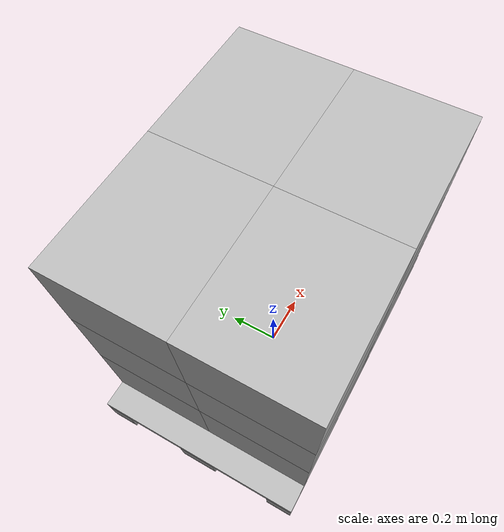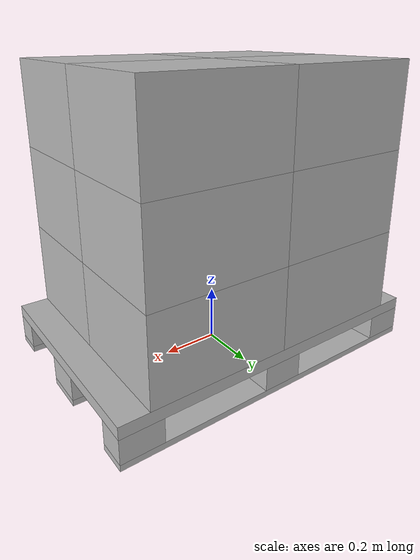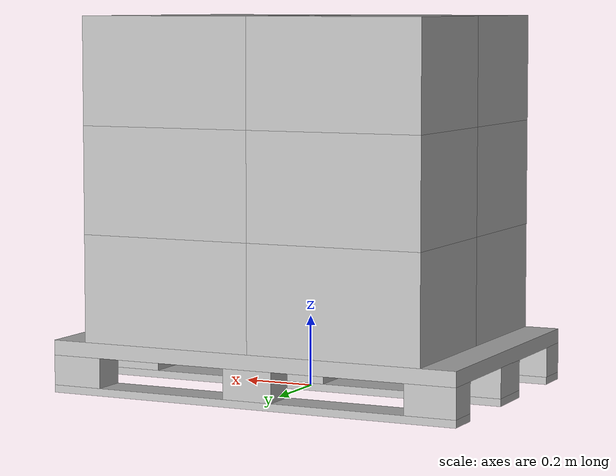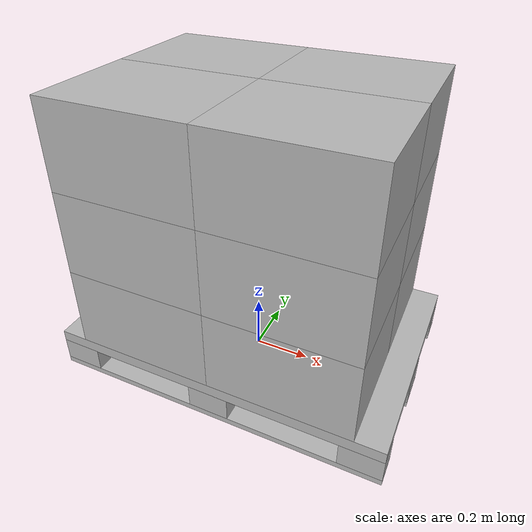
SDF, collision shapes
<?xml version="1.0" ?>
<!-- |    This document was autogenerated by xacro from model.xacro                    | -->
<!-- |    EDITING THIS FILE BY HAND IS NOT RECOMMENDED                                 | -->
<sdf version="1.5">
  <model name="pallet cardboard boxes">
    <!-- Rises the pallet above the ground -->
    <static>false</static>
    <self_collide>false</self_collide>
    <allow_auto_disable>true</allow_auto_disable>
    <link name="link">
      <pose>0 0 0.0635  0 0 0</pose>
      <inertial>
        <mass>25.0</mass>
        <inertia>
          <ixx>1</ixx>
          <ixy>0</ixy>
          <ixz>0</ixz>
          <iyy>1</iyy>
          <iyz>0</iyz>
          <izz>1</izz>
        </inertia>
      </inertial>
      <collision name="top">
        <pose>0 0 0.0625  0 0 0</pose>
        <geometry>
          <box>
            <size>1.20 0.80 0.042</size>
          </box>
        </geometry>
      </collision>
      <collision name="colum_1">
        <pose>0.5275 -0.35 0  0 0 0</pose>
        <geometry>
          <box>
            <size>.145 0.10 0.085</size>
          </box>
        </geometry>
      </collision>
      <collision name="colum_2">
        <pose>0.5275 0 0  0 0 0</pose>
        <geometry>
          <box>
            <size>.145 0.145 0.085</size>
          </box>
        </geometry>
      </collision>
      <collision name="colum_3">
        <pose>0.5275 0.35 0  0 0 0</pose>
        <geometry>
          <box>
            <size>.145 0.10 0.085</size>
          </box>
        </geometry>
      </collision>
      <collision name="colum_4">
        <pose>0 -0.35 0  0 0 0</pose>
        <geometry>
          <box>
            <size>.145 0.10 0.085</size>
          </box>
        </geometry>
      </collision>
      <collision name="colum_5">
        <pose>0 0 0  0 0 0</pose>
        <geometry>
          <box>
            <size>.145 0.145 0.085</size>
          </box>
        </geometry>
      </collision>
      <collision name="colum_6">
        <pose>0 0.35 0  0 0 0</pose>
        <geometry>
          <box>
            <size>.145 0.10 0.085</size>
          </box>
        </geometry>
      </collision>
      <collision name="colum_7">
        <pose>-0.5275 -0.35 0  0 0 0</pose>
        <geometry>
          <box>
            <size>.145 0.10 0.085</size>
          </box>
        </geometry>
      </collision>
      <collision name="colum_8">
        <pose>-0.5275 0 0  0 0 0</pose>
        <geometry>
          <box>
            <size>.145 0.145 0.085</size>
          </box>
        </geometry>
      </collision>
      <collision name="colum_9">
        <pose>-0.5275 0.35 0  0 0 0</pose>
        <geometry>
          <box>
            <size>.145 0.10 0.085</size>
          </box>
        </geometry>
      </collision>
      <collision name="bottom_1">
        <pose>0 -0.35 -0.053  0 0 0</pose>
        <geometry>
          <box>
            <size>1.20 0.10 0.021</size>
          </box>
        </geometry>
      </collision>
      <collision name="bottom_2">
        <pose>0 0 -0.053  0 0 0</pose>
        <geometry>
          <box>
            <size>1.20 0.145 0.021</size>
          </box>
        </geometry>
      </collision>
      <collision name="bottom_3">
        <pose>0 0.35 -0.053  0 0 0</pose>
        <geometry>
          <box>
            <size>1.20 0.10 0.021</size>
          </box>
        </geometry>
      </collision>
      <visual name="visual">
        <geometry>
          <mesh>
            <uri>model://europallet/meshes/europallet.dae</uri>
          </mesh>
        </geometry>
      </visual>
    </link>
    <!-- Cardboard Box dimensions: 50 x 40 x 30 cm-->
    <!-- First level of boxes -->
    <link name="cardboard_box_1_lvl_1">
      <pose>0.25 0.2 0.297  0 0 0</pose>
      <inertial>
        <mass>2</mass>
        <inertia>
          <ixx>0.041666667</ixx>
          <ixy>0</ixy>
          <ixz>0</ixz>
          <iyy>0.056666667</iyy>
          <iyz>0</iyz>
          <izz>0.068333333</izz>
        </inertia>
      </inertial>
      <collision name="collision">
        <geometry>
          <box>
            <size>0.5 0.4 0.3</size>
          </box>
        </geometry>
        <surface>
          <friction>
            <ode>
              <mu>1.0</mu>
              <mu2>1.0</mu2>
            </ode>
          </friction>
          <contact>
            <ode>
              <kp>10000000.0</kp>
              <kd>1.0</kd>
              <min_depth>0.001</min_depth>
              <max_vel>0.1</max_vel>
            </ode>
          </contact>
        </surface>
      </collision>
      <visual name="visual">
        <pose>0 0 -0.15 0 0 0</pose>
        <geometry>
          <mesh>
            <uri>model://cardboard_box/meshes/cardboard_box.dae</uri>
            <scale>1.25931896 1.007455168 0.755591376</scale>
          </mesh>
        </geometry>
      </visual>
    </link>
    <link name="cardboard_box_2_lvl_1">
      <pose>0.25 -0.2 0.297  0 0 0</pose>
      <inertial>
        <mass>2</mass>
        <inertia>
          <ixx>0.041666667</ixx>
          <ixy>0</ixy>
          <ixz>0</ixz>
          <iyy>0.056666667</iyy>
          <iyz>0</iyz>
          <izz>0.068333333</izz>
        </inertia>
      </inertial>
      <collision name="collision">
        <geometry>
          <box>
            <size>0.5 0.4 0.3</size>
          </box>
        </geometry>
        <surface>
          <friction>
            <ode>
              <mu>1.0</mu>
              <mu2>1.0</mu2>
            </ode>
          </friction>
          <contact>
            <ode>
              <kp>10000000.0</kp>
              <kd>1.0</kd>
              <min_depth>0.001</min_depth>
              <max_vel>0.1</max_vel>
            </ode>
          </contact>
        </surface>
      </collision>
      <visual name="visual">
        <pose>0 0 -0.15 0 0 0</pose>
        <geometry>
          <mesh>
            <uri>model://cardboard_box/meshes/cardboard_box.dae</uri>
            <scale>1.25931896 1.007455168 0.755591376</scale>
          </mesh>
        </geometry>
      </visual>
    </link>
    <link name="cardboard_box_3_lvl_1">
      <pose>-0.25 0.2 0.297  0 0 0</pose>
      <inertial>
        <mass>2</mass>
        <inertia>
          <ixx>0.041666667</ixx>
          <ixy>0</ixy>
          <ixz>0</ixz>
          <iyy>0.056666667</iyy>
          <iyz>0</iyz>
          <izz>0.068333333</izz>
        </inertia>
      </inertial>
      <collision name="collision">
        <geometry>
          <box>
            <size>0.5 0.4 0.3</size>
          </box>
        </geometry>
        <surface>
          <friction>
            <ode>
              <mu>1.0</mu>
              <mu2>1.0</mu2>
            </ode>
          </friction>
          <contact>
            <ode>
              <kp>10000000.0</kp>
              <kd>1.0</kd>
              <min_depth>0.001</min_depth>
              <max_vel>0.1</max_vel>
            </ode>
          </contact>
        </surface>
      </collision>
      <visual name="visual">
        <pose>0 0 -0.15 0 0 0</pose>
        <geometry>
          <mesh>
            <uri>model://cardboard_box/meshes/cardboard_box.dae</uri>
            <scale>1.25931896 1.007455168 0.755591376</scale>
          </mesh>
        </geometry>
      </visual>
    </link>
    <link name="cardboard_box_4_lvl_1">
      <pose>-0.25 -0.2 0.297  0 0 0</pose>
      <inertial>
        <mass>2</mass>
        <inertia>
          <ixx>0.041666667</ixx>
          <ixy>0</ixy>
          <ixz>0</ixz>
          <iyy>0.056666667</iyy>
          <iyz>0</iyz>
          <izz>0.068333333</izz>
        </inertia>
      </inertial>
      <collision name="collision">
        <geometry>
          <box>
            <size>0.5 0.4 0.3</size>
          </box>
        </geometry>
        <surface>
          <friction>
            <ode>
              <mu>1.0</mu>
              <mu2>1.0</mu2>
            </ode>
          </friction>
          <contact>
            <ode>
              <kp>10000000.0</kp>
              <kd>1.0</kd>
              <min_depth>0.001</min_depth>
              <max_vel>0.1</max_vel>
            </ode>
          </contact>
        </surface>
      </collision>
      <visual name="visual">
        <pose>0 0 -0.15 0 0 0</pose>
        <geometry>
          <mesh>
            <uri>model://cardboard_box/meshes/cardboard_box.dae</uri>
            <scale>1.25931896 1.007455168 0.755591376</scale>
          </mesh>
        </geometry>
      </visual>
    </link>
    <joint name="cardboard_box_1_lvl_1_joint" type="fixed">
      <parent>link</parent>
      <child>cardboard_box_1_lvl_1</child>
    </joint>
    <joint name="cardboard_box_2_lvl_1_joint" type="fixed">
      <parent>link</parent>
      <child>cardboard_box_2_lvl_1</child>
    </joint>
    <joint name="cardboard_box_3_lvl_1_joint" type="fixed">
      <parent>link</parent>
      <child>cardboard_box_3_lvl_1</child>
    </joint>
    <joint name="cardboard_box_4_lvl_1_joint" type="fixed">
      <parent>link</parent>
      <child>cardboard_box_4_lvl_1</child>
    </joint>
    <!-- Second level of boxes -->
    <link name="cardboard_box_1_lvl_2">
      <pose>0.25 0.2 0.597  0 0 0</pose>
      <inertial>
        <mass>2</mass>
        <inertia>
          <ixx>0.041666667</ixx>
          <ixy>0</ixy>
          <ixz>0</ixz>
          <iyy>0.056666667</iyy>
          <iyz>0</iyz>
          <izz>0.068333333</izz>
        </inertia>
      </inertial>
      <collision name="collision">
        <geometry>
          <box>
            <size>0.5 0.4 0.3</size>
          </box>
        </geometry>
        <surface>
          <friction>
            <ode>
              <mu>1.0</mu>
              <mu2>1.0</mu2>
            </ode>
          </friction>
          <contact>
            <ode>
              <kp>10000000.0</kp>
              <kd>1.0</kd>
              <min_depth>0.001</min_depth>
              <max_vel>0.1</max_vel>
            </ode>
          </contact>
        </surface>
      </collision>
      <visual name="visual">
        <pose>0 0 -0.15 0 0 0</pose>
        <geometry>
          <mesh>
            <uri>model://cardboard_box/meshes/cardboard_box.dae</uri>
            <scale>1.25931896 1.007455168 0.755591376</scale>
          </mesh>
        </geometry>
      </visual>
    </link>
    <link name="cardboard_box_2_lvl_2">
      <pose>0.25 -0.2 0.597  0 0 0</pose>
      <inertial>
        <mass>2</mass>
        <inertia>
          <ixx>0.041666667</ixx>
          <ixy>0</ixy>
          <ixz>0</ixz>
          <iyy>0.056666667</iyy>
          <iyz>0</iyz>
          <izz>0.068333333</izz>
        </inertia>
      </inertial>
      <collision name="collision">
        <geometry>
          <box>
            <size>0.5 0.4 0.3</size>
          </box>
        </geometry>
        <surface>
          <friction>
            <ode>
              <mu>1.0</mu>
              <mu2>1.0</mu2>
            </ode>
          </friction>
          <contact>
            <ode>
              <kp>10000000.0</kp>
              <kd>1.0</kd>
              <min_depth>0.001</min_depth>
              <max_vel>0.1</max_vel>
            </ode>
          </contact>
        </surface>
      </collision>
      <visual name="visual">
        <pose>0 0 -0.15 0 0 0</pose>
        <geometry>
          <mesh>
            <uri>model://cardboard_box/meshes/cardboard_box.dae</uri>
            <scale>1.25931896 1.007455168 0.755591376</scale>
          </mesh>
        </geometry>
      </visual>
    </link>
    <link name="cardboard_box_3_lvl_2">
      <pose>-0.25 0.2 0.597  0 0 0</pose>
      <inertial>
        <mass>2</mass>
        <inertia>
          <ixx>0.041666667</ixx>
          <ixy>0</ixy>
          <ixz>0</ixz>
          <iyy>0.056666667</iyy>
          <iyz>0</iyz>
          <izz>0.068333333</izz>
        </inertia>
      </inertial>
      <collision name="collision">
        <geometry>
          <box>
            <size>0.5 0.4 0.3</size>
          </box>
        </geometry>
        <surface>
          <friction>
            <ode>
              <mu>1.0</mu>
              <mu2>1.0</mu2>
            </ode>
          </friction>
          <contact>
            <ode>
              <kp>10000000.0</kp>
              <kd>1.0</kd>
              <min_depth>0.001</min_depth>
              <max_vel>0.1</max_vel>
            </ode>
          </contact>
        </surface>
      </collision>
      <visual name="visual">
        <pose>0 0 -0.15 0 0 0</pose>
        <geometry>
          <mesh>
            <uri>model://cardboard_box/meshes/cardboard_box.dae</uri>
            <scale>1.25931896 1.007455168 0.755591376</scale>
          </mesh>
        </geometry>
      </visual>
    </link>
    <link name="cardboard_box_4_lvl_2">
      <pose>-0.25 -0.2 0.597  0 0 0</pose>
      <inertial>
        <mass>2</mass>
        <inertia>
          <ixx>0.041666667</ixx>
          <ixy>0</ixy>
          <ixz>0</ixz>
          <iyy>0.056666667</iyy>
          <iyz>0</iyz>
          <izz>0.068333333</izz>
        </inertia>
      </inertial>
      <collision name="collision">
        <geometry>
          <box>
            <size>0.5 0.4 0.3</size>
          </box>
        </geometry>
        <surface>
          <friction>
            <ode>
              <mu>1.0</mu>
              <mu2>1.0</mu2>
            </ode>
          </friction>
          <contact>
            <ode>
              <kp>10000000.0</kp>
              <kd>1.0</kd>
              <min_depth>0.001</min_depth>
              <max_vel>0.1</max_vel>
            </ode>
          </contact>
        </surface>
      </collision>
      <visual name="visual">
        <pose>0 0 -0.15 0 0 0</pose>
        <geometry>
          <mesh>
            <uri>model://cardboard_box/meshes/cardboard_box.dae</uri>
            <scale>1.25931896 1.007455168 0.755591376</scale>
          </mesh>
        </geometry>
      </visual>
    </link>
    <joint name="cardboard_box_1_lvl_2_joint" type="fixed">
      <parent>link</parent>
      <child>cardboard_box_1_lvl_2</child>
    </joint>
    <joint name="cardboard_box_2_lvl_2_joint" type="fixed">
      <parent>link</parent>
      <child>cardboard_box_2_lvl_2</child>
    </joint>
    <joint name="cardboard_box_3_lvl_2_joint" type="fixed">
      <parent>link</parent>
      <child>cardboard_box_3_lvl_2</child>
    </joint>
    <joint name="cardboard_box_4_lvl_2_joint" type="fixed">
      <parent>link</parent>
      <child>cardboard_box_4_lvl_2</child>
    </joint>
    <!-- Third level of boxes -->
    <link name="cardboard_box_1_lvl_3">
      <pose>0.25 0.2 0.897  0 0 0</pose>
      <inertial>
        <mass>2</mass>
        <inertia>
          <ixx>0.041666667</ixx>
          <ixy>0</ixy>
          <ixz>0</ixz>
          <iyy>0.056666667</iyy>
          <iyz>0</iyz>
          <izz>0.068333333</izz>
        </inertia>
      </inertial>
      <collision name="collision">
        <geometry>
          <box>
            <size>0.5 0.4 0.3</size>
          </box>
        </geometry>
        <surface>
          <friction>
            <ode>
              <mu>1.0</mu>
              <mu2>1.0</mu2>
            </ode>
          </friction>
          <contact>
            <ode>
              <kp>10000000.0</kp>
              <kd>1.0</kd>
              <min_depth>0.001</min_depth>
              <max_vel>0.1</max_vel>
            </ode>
          </contact>
        </surface>
      </collision>
      <visual name="visual">
        <pose>0 0 -0.15 0 0 0</pose>
        <geometry>
          <mesh>
            <uri>model://cardboard_box/meshes/cardboard_box.dae</uri>
            <scale>1.25931896 1.007455168 0.755591376</scale>
          </mesh>
        </geometry>
      </visual>
    </link>
    <link name="cardboard_box_2_lvl_3">
      <pose>0.25 -0.2 0.897  0 0 0</pose>
      <inertial>
        <mass>2</mass>
        <inertia>
          <ixx>0.041666667</ixx>
          <ixy>0</ixy>
          <ixz>0</ixz>
          <iyy>0.056666667</iyy>
          <iyz>0</iyz>
          <izz>0.068333333</izz>
        </inertia>
      </inertial>
      <collision name="collision">
        <geometry>
          <box>
            <size>0.5 0.4 0.3</size>
          </box>
        </geometry>
        <surface>
          <friction>
            <ode>
              <mu>1.0</mu>
              <mu2>1.0</mu2>
            </ode>
          </friction>
          <contact>
            <ode>
              <kp>10000000.0</kp>
              <kd>1.0</kd>
              <min_depth>0.001</min_depth>
              <max_vel>0.1</max_vel>
            </ode>
          </contact>
        </surface>
      </collision>
      <visual name="visual">
        <pose>0 0 -0.15 0 0 0</pose>
        <geometry>
          <mesh>
            <uri>model://cardboard_box/meshes/cardboard_box.dae</uri>
            <scale>1.25931896 1.007455168 0.755591376</scale>
          </mesh>
        </geometry>
      </visual>
    </link>
    <link name="cardboard_box_3_lvl_3">
      <pose>-0.25 0.2 0.897  0 0 0</pose>
      <inertial>
        <mass>2</mass>
        <inertia>
          <ixx>0.041666667</ixx>
          <ixy>0</ixy>
          <ixz>0</ixz>
          <iyy>0.056666667</iyy>
          <iyz>0</iyz>
          <izz>0.068333333</izz>
        </inertia>
      </inertial>
      <collision name="collision">
        <geometry>
          <box>
            <size>0.5 0.4 0.3</size>
          </box>
        </geometry>
        <surface>
          <friction>
            <ode>
              <mu>1.0</mu>
              <mu2>1.0</mu2>
            </ode>
          </friction>
          <contact>
            <ode>
              <kp>10000000.0</kp>
              <kd>1.0</kd>
              <min_depth>0.001</min_depth>
              <max_vel>0.1</max_vel>
            </ode>
          </contact>
        </surface>
      </collision>
      <visual name="visual">
        <pose>0 0 -0.15 0 0 0</pose>
        <geometry>
          <mesh>
            <uri>model://cardboard_box/meshes/cardboard_box.dae</uri>
            <scale>1.25931896 1.007455168 0.755591376</scale>
          </mesh>
        </geometry>
      </visual>
    </link>
    <link name="cardboard_box_4_lvl_3">
      <pose>-0.25 -0.2 0.897  0 0 0</pose>
      <inertial>
        <mass>2</mass>
        <inertia>
          <ixx>0.041666667</ixx>
          <ixy>0</ixy>
          <ixz>0</ixz>
          <iyy>0.056666667</iyy>
          <iyz>0</iyz>
          <izz>0.068333333</izz>
        </inertia>
      </inertial>
      <collision name="collision">
        <geometry>
          <box>
            <size>0.5 0.4 0.3</size>
          </box>
        </geometry>
        <surface>
          <friction>
            <ode>
              <mu>1.0</mu>
              <mu2>1.0</mu2>
            </ode>
          </friction>
          <contact>
            <ode>
              <kp>10000000.0</kp>
              <kd>1.0</kd>
              <min_depth>0.001</min_depth>
              <max_vel>0.1</max_vel>
            </ode>
          </contact>
        </surface>
      </collision>
      <visual name="visual">
        <pose>0 0 -0.15 0 0 0</pose>
        <geometry>
          <mesh>
            <uri>model://cardboard_box/meshes/cardboard_box.dae</uri>
            <scale>1.25931896 1.007455168 0.755591376</scale>
          </mesh>
        </geometry>
      </visual>
    </link>
    <joint name="cardboard_box_1_lvl_3_joint" type="fixed">
      <parent>link</parent>
      <child>cardboard_box_1_lvl_3</child>
    </joint>
    <joint name="cardboard_box_2_lvl_3_joint" type="fixed">
      <parent>link</parent>
      <child>cardboard_box_2_lvl_3</child>
    </joint>
    <joint name="cardboard_box_3_lvl_3_joint" type="fixed">
      <parent>link</parent>
      <child>cardboard_box_3_lvl_3</child>
    </joint>
    <joint name="cardboard_box_4_lvl_3_joint" type="fixed">
      <parent>link</parent>
      <child>cardboard_box_4_lvl_3</child>
    </joint>
  </model>
</sdf>
